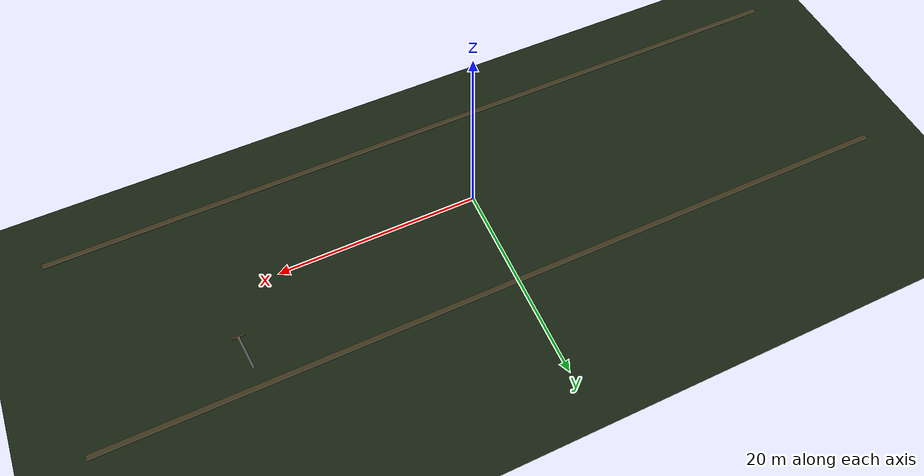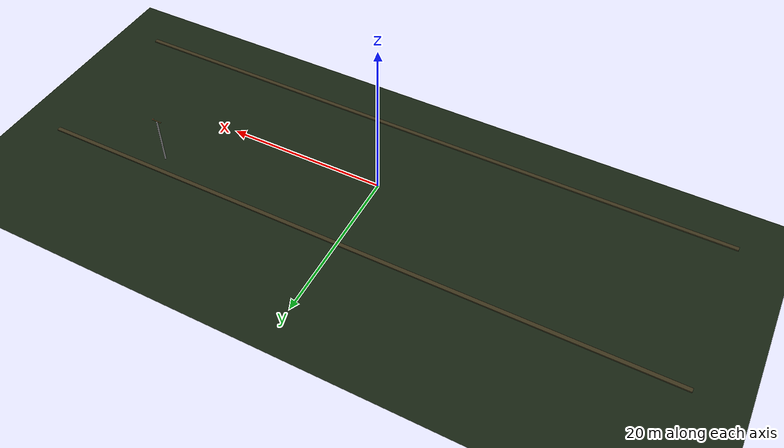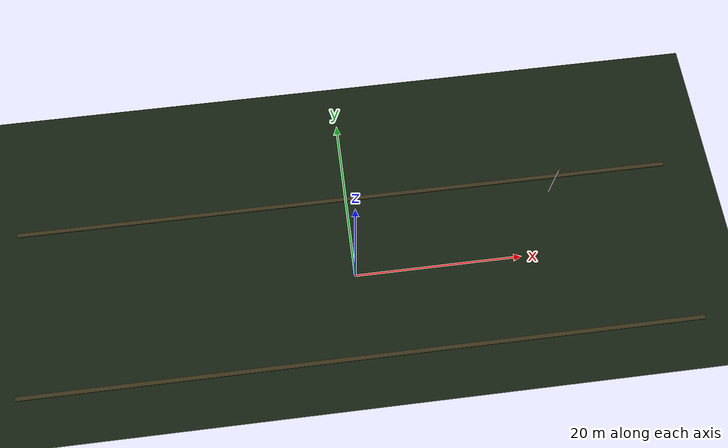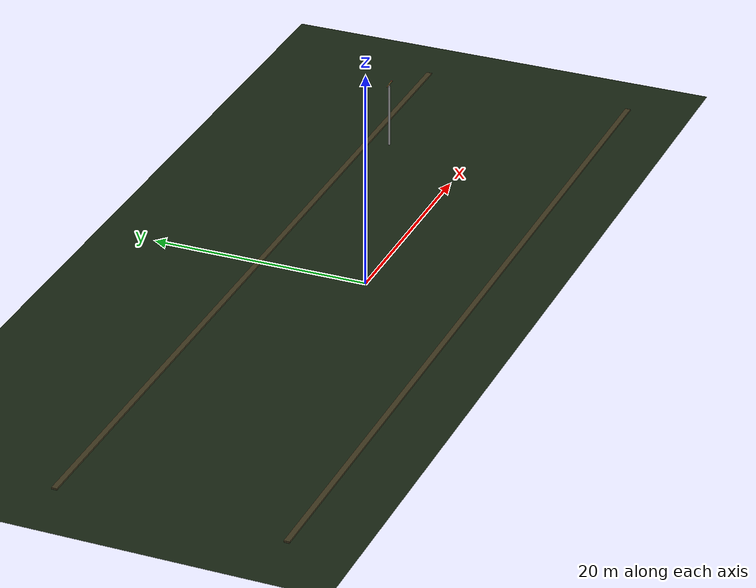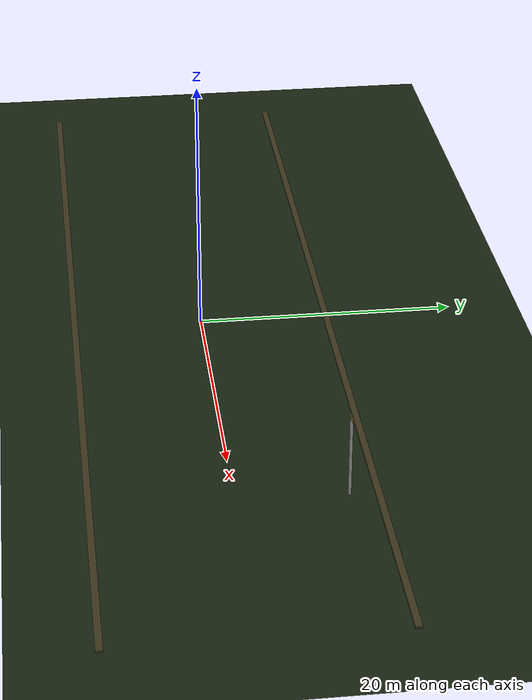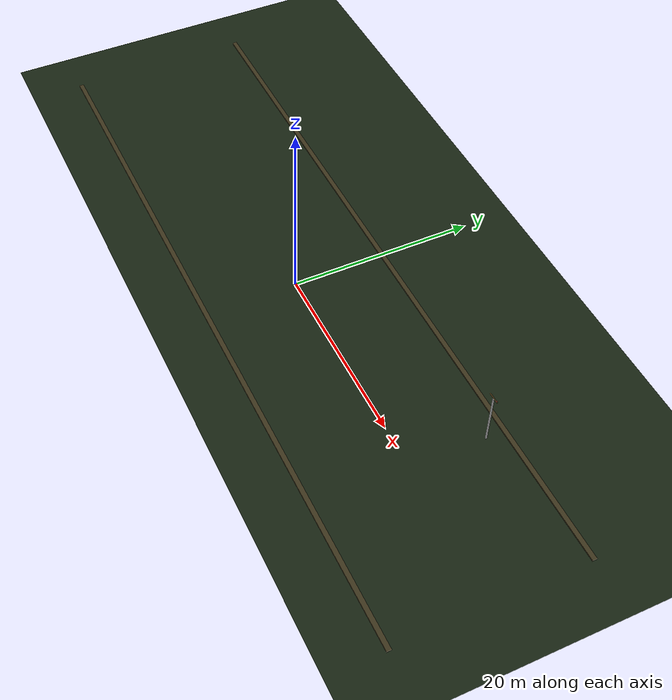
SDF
<?xml version="1.0" ?>
<sdf version="1.9">
  <!-- Cotton Field Night World - 夜间棉花田仿真场景 -->
  <!-- 棉花种植无人机智巡仿真系统 -->
  <world name="cotton_field_night_world">

    <physics type="ode">
      <max_step_size>0.001</max_step_size>
      <real_time_factor>1.0</real_time_factor>
      <real_time_update_rate>1000</real_time_update_rate>
    </physics>

    <!-- 夜间场景配置 -->
    <scene>
      <ambient>0.05 0.05 0.08 1</ambient>
      <background>0.02 0.02 0.05 1</background>
      <shadows>false</shadows>
      <grid>on</grid>
      <sky>
        <time>23:30</time>
        <sunrise>6:00</sunrise>
        <sunset>18:00</sunset>
      </sky>
    </scene>

    <!-- 月光 -->
    <light type="directional" name="moon_light">
      <cast_shadows>false</cast_shadows>
      <pose>-50 -50 100 0 0 0</pose>
      <diffuse>0.3 0.35 0.5 1</diffuse>
      <specular>0.0 0.0 0.0 1</specular>
      <direction>-0.5 -0.5 -1</direction>
      <intensity>0.3</intensity>
    </light>

    <!-- 无人机探照灯 -->
    <light type="spot" name="drone_spotlight">
      <pose>0 0 10 0 1.57 0</pose>
      <diffuse>0.9 0.95 1.0 1</diffuse>
      <specular>0.5 0.5 0.5 1</specular>
      <spot>
        <inner_angle>0.3</inner_angle>
        <outer_angle>0.5</outer_angle>
        <falloff>1.0</falloff>
      </spot>
      <attenuation>
        <range>50</range>
        <constant>0.5</constant>
        <linear>0.01</linear>
        <quadratic>0.001</quadratic>
      </attenuation>
      <direction>0 0 -1</direction>
      <intensity>1.5</intensity>
    </light>

    <!-- 地面 -->
    <model name="ground_plane">
      <static>true</static>
      <link name="ground_link">
        <pose>0 0 -0.01 0 0 0</pose>
        <collision name="ground_collision">
          <geometry>
            <plane>
              <normal>0 0 1</normal>
              <size>500 500</size>
            </plane>
          </geometry>
          <surface>
            <friction>
              <ode>
                <mu>0.8</mu>
                <mu2>0.8</mu2>
              </ode>
            </friction>
          </surface>
        </collision>
        <visual name="ground_visual">
          <geometry>
            <plane>
              <normal>0 0 1</normal>
              <size>500 500</size>
            </plane>
          </geometry>
          <material>
            <ambient>0.08 0.12 0.05 1</ambient>
            <diffuse>0.1 0.15 0.08 1</diffuse>
            <specular>0.0 0.0 0.0 1</specular>
          </material>
        </visual>
      </link>
    </model>

    <!-- 夜间田块（暗色） -->
    <model name="cotton_field_zone_1">
      <static>true</static>
      <link name="field_link">
        <visual name="ridge_visual">
          <geometry>
            <box>
              <size>80 0.5 0.15</size>
            </box>
          </geometry>
          <material>
            <ambient>0.2 0.18 0.1 1</ambient>
            <diffuse>0.25 0.22 0.12 1</diffuse>
          </material>
          <pose>0 10 0.075 0 0 0</pose>
        </visual>
        <visual name="ridge_visual_2">
          <geometry>
            <box>
              <size>80 0.5 0.15</size>
            </box>
          </geometry>
          <material>
            <ambient>0.2 0.18 0.1 1</ambient>
            <diffuse>0.25 0.22 0.12 1</diffuse>
          </material>
          <pose>0 -10 0.075 0 0 0</pose>
        </visual>
      </link>
    </model>

    <!-- 电线杆（带警示灯） -->
    <model name="electric_pole_1">
      <static>true</static>
      <include>
        <uri>model://electric_pole</uri>
        <pose>25 8 0 0 0 0</pose>
      </include>
      <link name="warning_light">
        <pose>0 0 6.5 0 0 0</pose>
        <light type="point" name="warning_light">
          <diffuse>1 0 0 1</diffuse>
          <intensity>2.0</intensity>
          <attenuation>
            <range>20</range>
            <constant>1.0</constant>
            <linear>0.05</linear>
          </attenuation>
        </light>
      </link>
    </model>

    <gui fullscreen='0'>
      <camera name='user_camera'>
        <pose>-30 -30 40 0 0.5 0.8</pose>
        <view_controller>orbit</view_controller>
      </camera>
    </gui>

    <plugin name="gazebo_ros_factory" filename="libgazebo_ros_factory.so"/>
    <plugin name="gazebo_ros_state" filename="libgazebo_ros_state.so"/>

  </world>
</sdf>

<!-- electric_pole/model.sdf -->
<!-- Electric Pole Model - 电线杆 Gazebo模型 -->
<sdf version="1.7">
  <model name="electric_pole">
    <static>true</static>
    <allow_auto_disable>true</allow_auto_disable>
    <link name="pole">
      <!-- 水泥杆 -->
      <collision name="pole_collision">
        <geometry><cylinder><radius>0.1</radius><length>6</length></cylinder></geometry>
        <pose>0 0 3 0 0 0</pose>
      </collision>
      <visual name="pole_visual">
        <geometry><cylinder><radius>0.1</radius><length>6</length></cylinder></geometry>
        <pose>0 0 3 0 0 0</pose>
        <material>
          <ambient>0.5 0.5 0.5 1</ambient>
          <diffuse>0.6 0.6 0.6 1</diffuse>
          <specular>0.1 0.1 0.1 1</specular>
        </material>
      </visual>
      <!-- 横担 -->
      <collision name="crossarm_collision">
        <geometry><box><size>1.2 0.08 0.08</size></box></geometry>
        <pose>0 0 6.2 0 0 0</pose>
      </collision>
      <visual name="crossarm_visual">
        <geometry><box><size>1.2 0.08 0.08</size></box></geometry>
        <pose>0 0 6.2 0 0 0</pose>
        <material><ambient>0.4 0.3 0.1 1</ambient><diffuse>0.5 0.4 0.2 1</diffuse></material>
      </visual>
      <!-- 绝缘子 -->
      <collision name="insulator_collision">
        <geometry><cylinder><radius>0.03</radius><length>0.15</length></cylinder></geometry>
        <pose>0.5 0 6.3 1.5708 0 0</pose>
      </collision>
      <visual name="insulator_visual">
        <geometry><cylinder><radius>0.03</radius><length>0.15</length></cylinder></geometry>
        <pose>0.5 0 6.3 1.5708 0 0</pose>
        <material><ambient>0.8 0.2 0.2 1</ambient><diffuse>0.9 0.3 0.3 1</diffuse></material>
      </visual>
    </link>
  </model>
</sdf>
